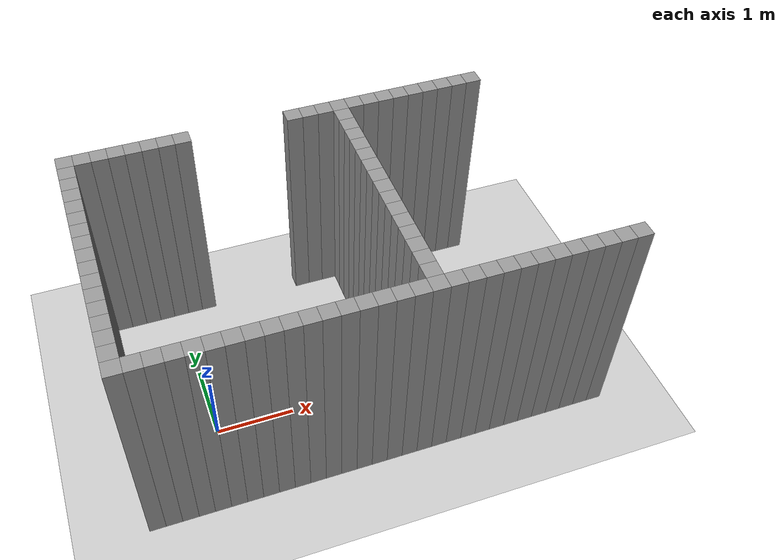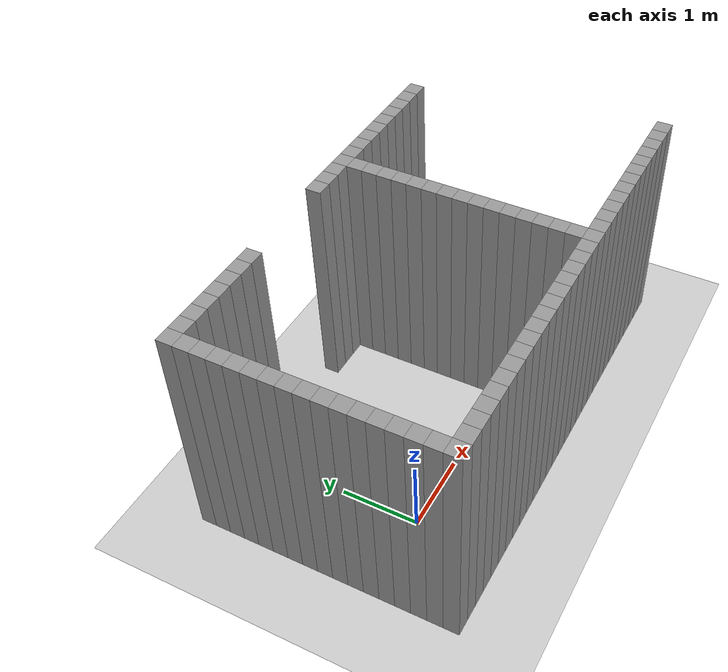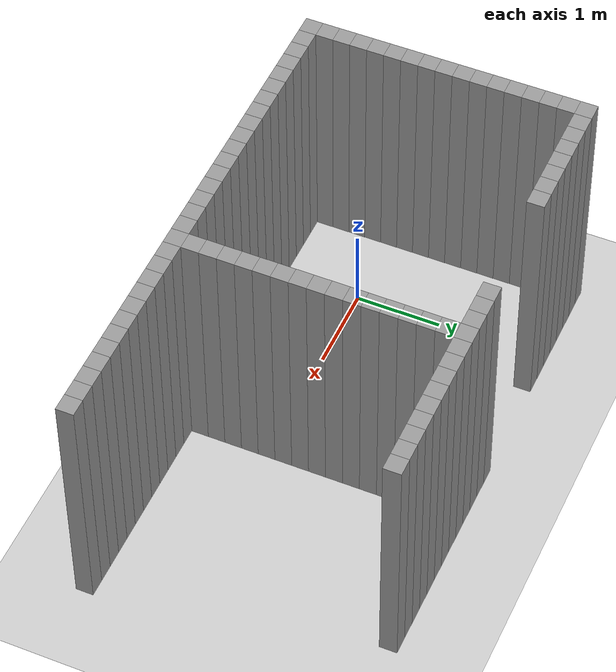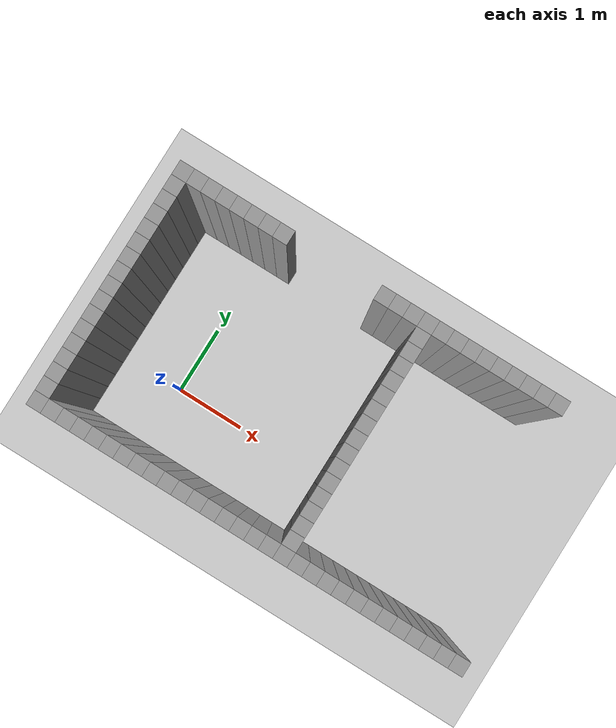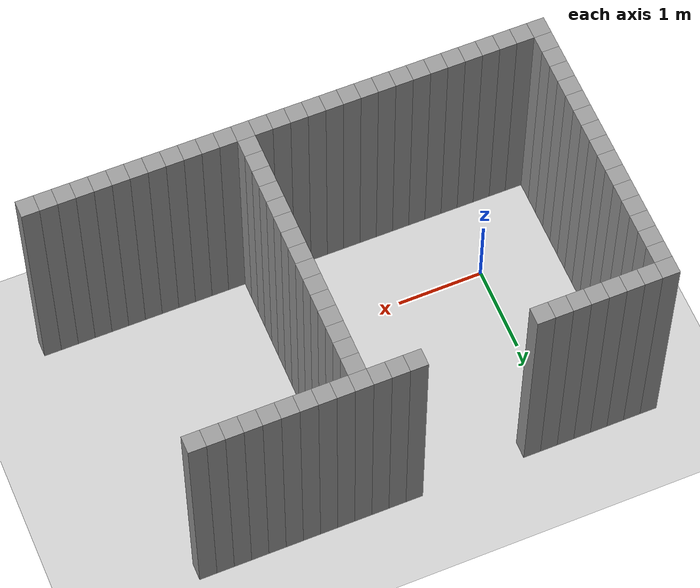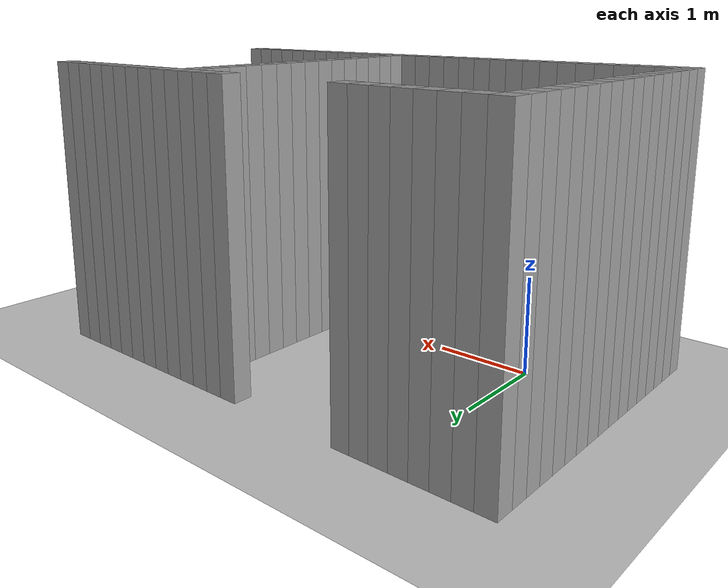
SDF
<sdf version="1.7">
 <world name="default">
  <model name="ground_plane">
   <static>1</static>
   <link name="link">
    <collision name="collision">
     <geometry><plane><normal>0 0 1</normal><size>100 100</size></plane></geometry>
     <surface>
      <contact><collide_bitmask>65535</collide_bitmask></contact>
      <friction><ode><mu>100</mu><mu2>50</mu2></ode></friction>
     </surface>
    </collision>
    <visual name="visual">
     <cast_shadows>0</cast_shadows>
     <geometry><plane><normal>0 0 1</normal><size>100 100</size></plane></geometry>
     <material>
      <script><uri>file://media/materials/scripts/gazebo.material</uri><name>Gazebo/Grey</name></script>
     </material>
    </visual>
   </link>
  </model>
  <model name="image49974">
   <pose>-1 -1 0 0 -0 0</pose>
   <link name="Wall_0">
    <collision name="Wall_0_Collision">
     <geometry><box><size>0.2 0.2 3</size></box></geometry>
     <pose>0 0 1.5 0 -0 0</pose>
    </collision>
    <visual name="Wall_0_Visual">
     <pose>0 0 1.5 0 -0 0</pose>
     <geometry><box><size>0.2 0.2 3</size></box></geometry>
     <material>
      <script><uri>file://media/materials/scripts/gazebo.material</uri><name>Gazebo/Grey</name></script>
      <ambient>1 1 1 1</ambient>
     </material>
     <meta><layer>0</layer></meta>
    </visual>
   </link>
   <link name="Wall_1">
    <collision name="Wall_1_Collision">
     <geometry><box><size>0.2 0.2 3</size></box></geometry>
     <pose>0 0 1.5 0 -0 0</pose>
    </collision>
    <visual name="Wall_1_Visual">
     <pose>0 0 1.5 0 -0 0</pose>
     <geometry><box><size>0.2 0.2 3</size></box></geometry>
     <material>
      <script><uri>file://media/materials/scripts/gazebo.material</uri><name>Gazebo/Grey</name></script>
      <ambient>1 1 1 1</ambient>
     </material>
     <meta><layer>0</layer></meta>
    </visual>
    <pose>0.0 0.2 0 0 -0 0</pose>
   </link>
   <link name="Wall_2">
    <collision name="Wall_2_Collision">
     <geometry><box><size>0.2 0.2 3</size></box></geometry>
     <pose>0 0 1.5 0 -0 0</pose>
    </collision>
    <visual name="Wall_2_Visual">
     <pose>0 0 1.5 0 -0 0</pose>
     <geometry><box><size>0.2 0.2 3</size></box></geometry>
     <material>
      <script><uri>file://media/materials/scripts/gazebo.material</uri><name>Gazebo/Grey</name></script>
      <ambient>1 1 1 1</ambient>
     </material>
     <meta><layer>0</layer></meta>
    </visual>
    <pose>0.0 0.4 0 0 -0 0</pose>
   </link>
   <link name="Wall_3">
    <collision name="Wall_3_Collision">
     <geometry><box><size>0.2 0.2 3</size></box></geometry>
     <pose>0 0 1.5 0 -0 0</pose>
    </collision>
    <visual name="Wall_3_Visual">
     <pose>0 0 1.5 0 -0 0</pose>
     <geometry><box><size>0.2 0.2 3</size></box></geometry>
     <material>
      <script><uri>file://media/materials/scripts/gazebo.material</uri><name>Gazebo/Grey</name></script>
      <ambient>1 1 1 1</ambient>
     </material>
     <meta><layer>0</layer></meta>
    </visual>
    <pose>0.0 0.6000000000000001 0 0 -0 0</pose>
   </link>
   <link name="Wall_4">
    <collision name="Wall_4_Collision">
     <geometry><box><size>0.2 0.2 3</size></box></geometry>
     <pose>0 0 1.5 0 -0 0</pose>
    </collision>
    <visual name="Wall_4_Visual">
     <pose>0 0 1.5 0 -0 0</pose>
     <geometry><box><size>0.2 0.2 3</size></box></geometry>
     <material>
      <script><uri>file://media/materials/scripts/gazebo.material</uri><name>Gazebo/Grey</name></script>
      <ambient>1 1 1 1</ambient>
     </material>
     <meta><layer>0</layer></meta>
    </visual>
    <pose>0.0 0.8 0 0 -0 0</pose>
   </link>
   <link name="Wall_5">
    <collision name="Wall_5_Collision">
     <geometry><box><size>0.2 0.2 3</size></box></geometry>
     <pose>0 0 1.5 0 -0 0</pose>
    </collision>
    <visual name="Wall_5_Visual">
     <pose>0 0 1.5 0 -0 0</pose>
     <geometry><box><size>0.2 0.2 3</size></box></geometry>
     <material>
      <script><uri>file://media/materials/scripts/gazebo.material</uri><name>Gazebo/Grey</name></script>
      <ambient>1 1 1 1</ambient>
     </material>
     <meta><layer>0</layer></meta>
    </visual>
    <pose>0.0 1.0 0 0 -0 0</pose>
   </link>
   <link name="Wall_6">
    <collision name="Wall_6_Collision">
     <geometry><box><size>0.2 0.2 3</size></box></geometry>
     <pose>0 0 1.5 0 -0 0</pose>
    </collision>
    <visual name="Wall_6_Visual">
     <pose>0 0 1.5 0 -0 0</pose>
     <geometry><box><size>0.2 0.2 3</size></box></geometry>
     <material>
      <script><uri>file://media/materials/scripts/gazebo.material</uri><name>Gazebo/Grey</name></script>
      <ambient>1 1 1 1</ambient>
     </material>
     <meta><layer>0</layer></meta>
    </visual>
    <pose>0.0 1.2000000000000002 0 0 -0 0</pose>
   </link>
   <link name="Wall_7">
    <collision name="Wall_7_Collision">
     <geometry><box><size>0.2 0.2 3</size></box></geometry>
     <pose>0 0 1.5 0 -0 0</pose>
    </collision>
    <visual name="Wall_7_Visual">
     <pose>0 0 1.5 0 -0 0</pose>
     <geometry><box><size>0.2 0.2 3</size></box></geometry>
     <material>
      <script><uri>file://media/materials/scripts/gazebo.material</uri><name>Gazebo/Grey</name></script>
      <ambient>1 1 1 1</ambient>
     </material>
     <meta><layer>0</layer></meta>
    </visual>
    <pose>0.0 1.4000000000000001 0 0 -0 0</pose>
   </link>
   <link name="Wall_8">
    <collision name="Wall_8_Collision">
     <geometry><box><size>0.2 0.2 3</size></box></geometry>
     <pose>0 0 1.5 0 -0 0</pose>
    </collision>
    <visual name="Wall_8_Visual">
     <pose>0 0 1.5 0 -0 0</pose>
     <geometry><box><size>0.2 0.2 3</size></box></geometry>
     <material>
      <script><uri>file://media/materials/scripts/gazebo.material</uri><name>Gazebo/Grey</name></script>
      <ambient>1 1 1 1</ambient>
     </material>
     <meta><layer>0</layer></meta>
    </visual>
    <pose>0.0 1.6 0 0 -0 0</pose>
   </link>
   <link name="Wall_9">
    <collision name="Wall_9_Collision">
     <geometry><box><size>0.2 0.2 3</size></box></geometry>
     <pose>0 0 1.5 0 -0 0</pose>
    </collision>
    <visual name="Wall_9_Visual">
     <pose>0 0 1.5 0 -0 0</pose>
     <geometry><box><size>0.2 0.2 3</size></box></geometry>
     <material>
      <script><uri>file://media/materials/scripts/gazebo.material</uri><name>Gazebo/Grey</name></script>
      <ambient>1 1 1 1</ambient>
     </material>
     <meta><layer>0</layer></meta>
    </visual>
    <pose>0.0 1.8 0 0 -0 0</pose>
   </link>
   <link name="Wall_10">
    <collision name="Wall_10_Collision">
     <geometry><box><size>0.2 0.2 3</size></box></geometry>
     <pose>0 0 1.5 0 -0 0</pose>
    </collision>
    <visual name="Wall_10_Visual">
     <pose>0 0 1.5 0 -0 0</pose>
     <geometry><box><size>0.2 0.2 3</size></box></geometry>
     <material>
      <script><uri>file://media/materials/scripts/gazebo.material</uri><name>Gazebo/Grey</name></script>
      <ambient>1 1 1 1</ambient>
     </material>
     <meta><layer>0</layer></meta>
    </visual>
    <pose>0.0 2.0 0 0 -0 0</pose>
   </link>
   <link name="Wall_11">
    <collision name="Wall_11_Collision">
     <geometry><box><size>0.2 0.2 3</size></box></geometry>
     <pose>0 0 1.5 0 -0 0</pose>
    </collision>
    <visual name="Wall_11_Visual">
     <pose>0 0 1.5 0 -0 0</pose>
     <geometry><box><size>0.2 0.2 3</size></box></geometry>
     <material>
      <script><uri>file://media/materials/scripts/gazebo.material</uri><name>Gazebo/Grey</name></script>
      <ambient>1 1 1 1</ambient>
     </material>
     <meta><layer>0</layer></meta>
    </visual>
    <pose>0.0 2.2 0 0 -0 0</pose>
   </link>
   <link name="Wall_12">
    <collision name="Wall_12_Collision">
     <geometry><box><size>0.2 0.2 3</size></box></geometry>
     <pose>0 0 1.5 0 -0 0</pose>
    </collision>
    <visual name="Wall_12_Visual">
     <pose>0 0 1.5 0 -0 0</pose>
     <geometry><box><size>0.2 0.2 3</size></box></geometry>
     <material>
      <script><uri>file://media/materials/scripts/gazebo.material</uri><name>Gazebo/Grey</name></script>
      <ambient>1 1 1 1</ambient>
     </material>
     <meta><layer>0</layer></meta>
    </visual>
    <pose>0.0 2.4000000000000004 0 0 -0 0</pose>
   </link>
   <link name="Wall_13">
    <collision name="Wall_13_Collision">
     <geometry><box><size>0.2 0.2 3</size></box></geometry>
     <pose>0 0 1.5 0 -0 0</pose>
    </collision>
    <visual name="Wall_13_Visual">
     <pose>0 0 1.5 0 -0 0</pose>
     <geometry><box><size>0.2 0.2 3</size></box></geometry>
     <material>
      <script><uri>file://media/materials/scripts/gazebo.material</uri><name>Gazebo/Grey</name></script>
      <ambient>1 1 1 1</ambient>
     </material>
     <meta><layer>0</layer></meta>
    </visual>
    <pose>0.0 2.6 0 0 -0 0</pose>
   </link>
   <link name="Wall_14">
    <collision name="Wall_14_Collision">
     <geometry><box><size>0.2 0.2 3</size></box></geometry>
     <pose>0 0 1.5 0 -0 0</pose>
    </collision>
    <visual name="Wall_14_Visual">
     <pose>0 0 1.5 0 -0 0</pose>
     <geometry><box><size>0.2 0.2 3</size></box></geometry>
     <material>
      <script><uri>file://media/materials/scripts/gazebo.material</uri><name>Gazebo/Grey</name></script>
      <ambient>1 1 1 1</ambient>
     </material>
     <meta><layer>0</layer></meta>
    </visual>
    <pose>0.0 2.8000000000000003 0 0 -0 0</pose>
   </link>
   <link name="Wall_15">
    <collision name="Wall_15_Collision">
     <geometry><box><size>0.2 0.2 3</size></box></geometry>
     <pose>0 0 1.5 0 -0 0</pose>
    </collision>
    <visual name="Wall_15_Visual">
     <pose>0 0 1.5 0 -0 0</pose>
     <geometry><box><size>0.2 0.2 3</size></box></geometry>
     <material>
      <script><uri>file://media/materials/scripts/gazebo.material</uri><name>Gazebo/Grey</name></script>
      <ambient>1 1 1 1</ambient>
     </material>
     <meta><layer>0</layer></meta>
    </visual>
    <pose>0.0 3.0 0 0 -0 0</pose>
   </link>
   <link name="Wall_16">
    <collision name="Wall_16_Collision">
     <geometry><box><size>0.2 0.2 3</size></box></geometry>
     <pose>0 0 1.5 0 -0 0</pose>
    </collision>
    <visual name="Wall_16_Visual">
     <pose>0 0 1.5 0 -0 0</pose>
     <geometry><box><size>0.2 0.2 3</size></box></geometry>
     <material>
      <script><uri>file://media/materials/scripts/gazebo.material</uri><name>Gazebo/Grey</name></script>
      <ambient>1 1 1 1</ambient>
     </material>
     <meta><layer>0</layer></meta>
    </visual>
    <pose>0.0 3.2 0 0 -0 0</pose>
   </link>
   <link name="Wall_60">
    <collision name="Wall_60_Collision">
     <geometry><box><size>0.2 0.2 3</size></box></geometry>
     <pose>0 0 1.5 0 -0 0</pose>
    </collision>
    <visual name="Wall_60_Visual">
     <pose>0 0 1.5 0 -0 0</pose>
     <geometry><box><size>0.2 0.2 3</size></box></geometry>
     <material>
      <script><uri>file://media/materials/scripts/gazebo.material</uri><name>Gazebo/Grey</name></script>
      <ambient>1 1 1 1</ambient>
     </material>
     <meta><layer>0</layer></meta>
    </visual>
    <pose>0.2 0.0 0 0 -0 0</pose>
   </link>
   <link name="Wall_61">
    <collision name="Wall_61_Collision">
     <geometry><box><size>0.2 0.2 3</size></box></geometry>
     <pose>0 0 1.5 0 -0 0</pose>
    </collision>
    <visual name="Wall_61_Visual">
     <pose>0 0 1.5 0 -0 0</pose>
     <geometry><box><size>0.2 0.2 3</size></box></geometry>
     <material>
      <script><uri>file://media/materials/scripts/gazebo.material</uri><name>Gazebo/Grey</name></script>
      <ambient>1 1 1 1</ambient>
     </material>
     <meta><layer>0</layer></meta>
    </visual>
    <pose>0.2 3.2 0 0 -0 0</pose>
   </link>
   <link name="Wall_66">
    <collision name="Wall_66_Collision">
     <geometry><box><size>0.2 0.2 3</size></box></geometry>
     <pose>0 0 1.5 0 -0 0</pose>
    </collision>
    <visual name="Wall_66_Visual">
     <pose>0 0 1.5 0 -0 0</pose>
     <geometry><box><size>0.2 0.2 3</size></box></geometry>
     <material>
      <script><uri>file://media/materials/scripts/gazebo.material</uri><name>Gazebo/Grey</name></script>
      <ambient>1 1 1 1</ambient>
     </material>
     <meta><layer>0</layer></meta>
    </visual>
    <pose>0.4 0.0 0 0 -0 0</pose>
   </link>
   <link name="Wall_67">
    <collision name="Wall_67_Collision">
     <geometry><box><size>0.2 0.2 3</size></box></geometry>
     <pose>0 0 1.5 0 -0 0</pose>
    </collision>
    <visual name="Wall_67_Visual">
     <pose>0 0 1.5 0 -0 0</pose>
     <geometry><box><size>0.2 0.2 3</size></box></geometry>
     <material>
      <script><uri>file://media/materials/scripts/gazebo.material</uri><name>Gazebo/Grey</name></script>
      <ambient>1 1 1 1</ambient>
     </material>
     <meta><layer>0</layer></meta>
    </visual>
    <pose>0.4 3.2 0 0 -0 0</pose>
   </link>
   <link name="Wall_72">
    <collision name="Wall_72_Collision">
     <geometry><box><size>0.2 0.2 3</size></box></geometry>
     <pose>0 0 1.5 0 -0 0</pose>
    </collision>
    <visual name="Wall_72_Visual">
     <pose>0 0 1.5 0 -0 0</pose>
     <geometry><box><size>0.2 0.2 3</size></box></geometry>
     <material>
      <script><uri>file://media/materials/scripts/gazebo.material</uri><name>Gazebo/Grey</name></script>
      <ambient>1 1 1 1</ambient>
     </material>
     <meta><layer>0</layer></meta>
    </visual>
    <pose>0.6000000000000001 0.0 0 0 -0 0</pose>
   </link>
   <link name="Wall_73">
    <collision name="Wall_73_Collision">
     <geometry><box><size>0.2 0.2 3</size></box></geometry>
     <pose>0 0 1.5 0 -0 0</pose>
    </collision>
    <visual name="Wall_73_Visual">
     <pose>0 0 1.5 0 -0 0</pose>
     <geometry><box><size>0.2 0.2 3</size></box></geometry>
     <material>
      <script><uri>file://media/materials/scripts/gazebo.material</uri><name>Gazebo/Grey</name></script>
      <ambient>1 1 1 1</ambient>
     </material>
     <meta><layer>0</layer></meta>
    </visual>
    <pose>0.6000000000000001 3.2 0 0 -0 0</pose>
   </link>
   <link name="Wall_78">
    <collision name="Wall_78_Collision">
     <geometry><box><size>0.2 0.2 3</size></box></geometry>
     <pose>0 0 1.5 0 -0 0</pose>
    </collision>
    <visual name="Wall_78_Visual">
     <pose>0 0 1.5 0 -0 0</pose>
     <geometry><box><size>0.2 0.2 3</size></box></geometry>
     <material>
      <script><uri>file://media/materials/scripts/gazebo.material</uri><name>Gazebo/Grey</name></script>
      <ambient>1 1 1 1</ambient>
     </material>
     <meta><layer>0</layer></meta>
    </visual>
    <pose>0.8 0.0 0 0 -0 0</pose>
   </link>
   <link name="Wall_79">
    <collision name="Wall_79_Collision">
     <geometry><box><size>0.2 0.2 3</size></box></geometry>
     <pose>0 0 1.5 0 -0 0</pose>
    </collision>
    <visual name="Wall_79_Visual">
     <pose>0 0 1.5 0 -0 0</pose>
     <geometry><box><size>0.2 0.2 3</size></box></geometry>
     <material>
      <script><uri>file://media/materials/scripts/gazebo.material</uri><name>Gazebo/Grey</name></script>
      <ambient>1 1 1 1</ambient>
     </material>
     <meta><layer>0</layer></meta>
    </visual>
    <pose>0.8 3.2 0 0 -0 0</pose>
   </link>
   <link name="Wall_84">
    <collision name="Wall_84_Collision">
     <geometry><box><size>0.2 0.2 3</size></box></geometry>
     <pose>0 0 1.5 0 -0 0</pose>
    </collision>
    <visual name="Wall_84_Visual">
     <pose>0 0 1.5 0 -0 0</pose>
     <geometry><box><size>0.2 0.2 3</size></box></geometry>
     <material>
      <script><uri>file://media/materials/scripts/gazebo.material</uri><name>Gazebo/Grey</name></script>
      <ambient>1 1 1 1</ambient>
     </material>
     <meta><layer>0</layer></meta>
    </visual>
    <pose>1.0 0.0 0 0 -0 0</pose>
   </link>
   <link name="Wall_85">
    <collision name="Wall_85_Collision">
     <geometry><box><size>0.2 0.2 3</size></box></geometry>
     <pose>0 0 1.5 0 -0 0</pose>
    </collision>
    <visual name="Wall_85_Visual">
     <pose>0 0 1.5 0 -0 0</pose>
     <geometry><box><size>0.2 0.2 3</size></box></geometry>
     <material>
      <script><uri>file://media/materials/scripts/gazebo.material</uri><name>Gazebo/Grey</name></script>
      <ambient>1 1 1 1</ambient>
     </material>
     <meta><layer>0</layer></meta>
    </visual>
    <pose>1.0 3.2 0 0 -0 0</pose>
   </link>
   <link name="Wall_89">
    <collision name="Wall_89_Collision">
     <geometry><box><size>0.2 0.2 3</size></box></geometry>
     <pose>0 0 1.5 0 -0 0</pose>
    </collision>
    <visual name="Wall_89_Visual">
     <pose>0 0 1.5 0 -0 0</pose>
     <geometry><box><size>0.2 0.2 3</size></box></geometry>
     <material>
      <script><uri>file://media/materials/scripts/gazebo.material</uri><name>Gazebo/Grey</name></script>
      <ambient>1 1 1 1</ambient>
     </material>
     <meta><layer>0</layer></meta>
    </visual>
    <pose>1.2000000000000002 0.0 0 0 -0 0</pose>
   </link>
   <link name="Wall_90">
    <collision name="Wall_90_Collision">
     <geometry><box><size>0.2 0.2 3</size></box></geometry>
     <pose>0 0 1.5 0 -0 0</pose>
    </collision>
    <visual name="Wall_90_Visual">
     <pose>0 0 1.5 0 -0 0</pose>
     <geometry><box><size>0.2 0.2 3</size></box></geometry>
     <material>
      <script><uri>file://media/materials/scripts/gazebo.material</uri><name>Gazebo/Grey</name></script>
      <ambient>1 1 1 1</ambient>
     </material>
     <meta><layer>0</layer></meta>
    </visual>
    <pose>1.2000000000000002 3.2 0 0 -0 0</pose>
   </link>
   <link name="Wall_94">
    <collision name="Wall_94_Collision">
     <geometry><box><size>0.2 0.2 3</size></box></geometry>
     <pose>0 0 1.5 0 -0 0</pose>
    </collision>
    <visual name="Wall_94_Visual">
     <pose>0 0 1.5 0 -0 0</pose>
     <geometry><box><size>0.2 0.2 3</size></box></geometry>
     <material>
      <script><uri>file://media/materials/scripts/gazebo.material</uri><name>Gazebo/Grey</name></script>
      <ambient>1 1 1 1</ambient>
     </material>
     <meta><layer>0</layer></meta>
    </visual>
    <pose>1.4000000000000001 0.0 0 0 -0 0</pose>
   </link>
   <link name="Wall_95">
    <collision name="Wall_95_Collision">
     <geometry><box><size>0.2 0.2 3</size></box></geometry>
     <pose>0 0 1.5 0 -0 0</pose>
    </collision>
    <visual name="Wall_95_Visual">
     <pose>0 0 1.5 0 -0 0</pose>
     <geometry><box><size>0.2 0.2 3</size></box></geometry>
     <material>
      <script><uri>file://media/materials/scripts/gazebo.material</uri><name>Gazebo/Grey</name></script>
      <ambient>1 1 1 1</ambient>
     </material>
     <meta><layer>0</layer></meta>
    </visual>
    <pose>1.4000000000000001 3.2 0 0 -0 0</pose>
   </link>
   <link name="Wall_99">
    <collision name="Wall_99_Collision">
     <geometry><box><size>0.2 0.2 3</size></box></geometry>
     <pose>0 0 1.5 0 -0 0</pose>
    </collision>
    <visual name="Wall_99_Visual">
     <pose>0 0 1.5 0 -0 0</pose>
     <geometry><box><size>0.2 0.2 3</size></box></geometry>
     <material>
      <script><uri>file://media/materials/scripts/gazebo.material</uri><name>Gazebo/Grey</name></script>
      <ambient>1 1 1 1</ambient>
     </material>
     <meta><layer>0</layer></meta>
    </visual>
    <pose>1.6 0.0 0 0 -0 0</pose>
   </link>
   <link name="Wall_103">
    <collision name="Wall_103_Collision">
     <geometry><box><size>0.2 0.2 3</size></box></geometry>
     <pose>0 0 1.5 0 -0 0</pose>
    </collision>
    <visual name="Wall_103_Visual">
     <pose>0 0 1.5 0 -0 0</pose>
     <geometry><box><size>0.2 0.2 3</size></box></geometry>
     <material>
      <script><uri>file://media/materials/scripts/gazebo.material</uri><name>Gazebo/Grey</name></script>
      <ambient>1 1 1 1</ambient>
     </material>
     <meta><layer>0</layer></meta>
    </visual>
    <pose>1.8 0.0 0 0 -0 0</pose>
   </link>
   <link name="Wall_107">
    <collision name="Wall_107_Collision">
     <geometry><box><size>0.2 0.2 3</size></box></geometry>
     <pose>0 0 1.5 0 -0 0</pose>
    </collision>
    <visual name="Wall_107_Visual">
     <pose>0 0 1.5 0 -0 0</pose>
     <geometry><box><size>0.2 0.2 3</size></box></geometry>
     <material>
      <script><uri>file://media/materials/scripts/gazebo.material</uri><name>Gazebo/Grey</name></script>
      <ambient>1 1 1 1</ambient>
     </material>
     <meta><layer>0</layer></meta>
    </visual>
    <pose>2.0 0.0 0 0 -0 0</pose>
   </link>
   <link name="Wall_111">
    <collision name="Wall_111_Collision">
     <geometry><box><size>0.2 0.2 3</size></box></geometry>
     <pose>0 0 1.5 0 -0 0</pose>
    </collision>
    <visual name="Wall_111_Visual">
     <pose>0 0 1.5 0 -0 0</pose>
     <geometry><box><size>0.2 0.2 3</size></box></geometry>
     <material>
      <script><uri>file://media/materials/scripts/gazebo.material</uri><name>Gazebo/Grey</name></script>
      <ambient>1 1 1 1</ambient>
     </material>
     <meta><layer>0</layer></meta>
    </visual>
    <pose>2.2 0.0 0 0 -0 0</pose>
   </link>
   <link name="Wall_115">
    <collision name="Wall_115_Collision">
     <geometry><box><size>0.2 0.2 3</size></box></geometry>
     <pose>0 0 1.5 0 -0 0</pose>
    </collision>
    <visual name="Wall_115_Visual">
     <pose>0 0 1.5 0 -0 0</pose>
     <geometry><box><size>0.2 0.2 3</size></box></geometry>
     <material>
      <script><uri>file://media/materials/scripts/gazebo.material</uri><name>Gazebo/Grey</name></script>
      <ambient>1 1 1 1</ambient>
     </material>
     <meta><layer>0</layer></meta>
    </visual>
    <pose>2.4000000000000004 0.0 0 0 -0 0</pose>
   </link>
   <link name="Wall_131">
    <collision name="Wall_131_Collision">
     <geometry><box><size>0.2 0.2 3</size></box></geometry>
     <pose>0 0 1.5 0 -0 0</pose>
    </collision>
    <visual name="Wall_131_Visual">
     <pose>0 0 1.5 0 -0 0</pose>
     <geometry><box><size>0.2 0.2 3</size></box></geometry>
     <material>
      <script><uri>file://media/materials/scripts/gazebo.material</uri><name>Gazebo/Grey</name></script>
      <ambient>1 1 1 1</ambient>
     </material>
     <meta><layer>0</layer></meta>
    </visual>
    <pose>2.6 0.0 0 0 -0 0</pose>
   </link>
   <link name="Wall_136">
    <collision name="Wall_136_Collision">
     <geometry><box><size>0.2 0.2 3</size></box></geometry>
     <pose>0 0 1.5 0 -0 0</pose>
    </collision>
    <visual name="Wall_136_Visual">
     <pose>0 0 1.5 0 -0 0</pose>
     <geometry><box><size>0.2 0.2 3</size></box></geometry>
     <material>
      <script><uri>file://media/materials/scripts/gazebo.material</uri><name>Gazebo/Grey</name></script>
      <ambient>1 1 1 1</ambient>
     </material>
     <meta><layer>0</layer></meta>
    </visual>
    <pose>2.8000000000000003 0.0 0 0 -0 0</pose>
   </link>
   <link name="Wall_137">
    <collision name="Wall_137_Collision">
     <geometry><box><size>0.2 0.2 3</size></box></geometry>
     <pose>0 0 1.5 0 -0 0</pose>
    </collision>
    <visual name="Wall_137_Visual">
     <pose>0 0 1.5 0 -0 0</pose>
     <geometry><box><size>0.2 0.2 3</size></box></geometry>
     <material>
      <script><uri>file://media/materials/scripts/gazebo.material</uri><name>Gazebo/Grey</name></script>
      <ambient>1 1 1 1</ambient>
     </material>
     <meta><layer>0</layer></meta>
    </visual>
    <pose>2.8000000000000003 3.2 0 0 -0 0</pose>
   </link>
   <link name="Wall_145">
    <collision name="Wall_145_Collision">
     <geometry><box><size>0.2 0.2 3</size></box></geometry>
     <pose>0 0 1.5 0 -0 0</pose>
    </collision>
    <visual name="Wall_145_Visual">
     <pose>0 0 1.5 0 -0 0</pose>
     <geometry><box><size>0.2 0.2 3</size></box></geometry>
     <material>
      <script><uri>file://media/materials/scripts/gazebo.material</uri><name>Gazebo/Grey</name></script>
      <ambient>1 1 1 1</ambient>
     </material>
     <meta><layer>0</layer></meta>
    </visual>
    <pose>3.0 0.0 0 0 -0 0</pose>
   </link>
   <link name="Wall_146">
    <collision name="Wall_146_Collision">
     <geometry><box><size>0.2 0.2 3</size></box></geometry>
     <pose>0 0 1.5 0 -0 0</pose>
    </collision>
    <visual name="Wall_146_Visual">
     <pose>0 0 1.5 0 -0 0</pose>
     <geometry><box><size>0.2 0.2 3</size></box></geometry>
     <material>
      <script><uri>file://media/materials/scripts/gazebo.material</uri><name>Gazebo/Grey</name></script>
      <ambient>1 1 1 1</ambient>
     </material>
     <meta><layer>0</layer></meta>
    </visual>
    <pose>3.0 3.2 0 0 -0 0</pose>
   </link>
   <link name="Wall_149">
    <collision name="Wall_149_Collision">
     <geometry><box><size>0.2 0.2 3</size></box></geometry>
     <pose>0 0 1.5 0 -0 0</pose>
    </collision>
    <visual name="Wall_149_Visual">
     <pose>0 0 1.5 0 -0 0</pose>
     <geometry><box><size>0.2 0.2 3</size></box></geometry>
     <material>
      <script><uri>file://media/materials/scripts/gazebo.material</uri><name>Gazebo/Grey</name></script>
      <ambient>1 1 1 1</ambient>
     </material>
     <meta><layer>0</layer></meta>
    </visual>
    <pose>3.2 0.0 0 0 -0 0</pose>
   </link>
   <link name="Wall_150">
    <collision name="Wall_150_Collision">
     <geometry><box><size>0.2 0.2 3</size></box></geometry>
     <pose>0 0 1.5 0 -0 0</pose>
    </collision>
    <visual name="Wall_150_Visual">
     <pose>0 0 1.5 0 -0 0</pose>
     <geometry><box><size>0.2 0.2 3</size></box></geometry>
     <material>
      <script><uri>file://media/materials/scripts/gazebo.material</uri><name>Gazebo/Grey</name></script>
      <ambient>1 1 1 1</ambient>
     </material>
     <meta><layer>0</layer></meta>
    </visual>
    <pose>3.2 3.2 0 0 -0 0</pose>
   </link>
   <link name="Wall_153">
    <collision name="Wall_153_Collision">
     <geometry><box><size>0.2 0.2 3</size></box></geometry>
     <pose>0 0 1.5 0 -0 0</pose>
    </collision>
    <visual name="Wall_153_Visual">
     <pose>0 0 1.5 0 -0 0</pose>
     <geometry><box><size>0.2 0.2 3</size></box></geometry>
     <material>
      <script><uri>file://media/materials/scripts/gazebo.material</uri><name>Gazebo/Grey</name></script>
      <ambient>1 1 1 1</ambient>
     </material>
     <meta><layer>0</layer></meta>
    </visual>
    <pose>3.4000000000000004 0.0 0 0 -0 0</pose>
   </link>
   <link name="Wall_154">
    <collision name="Wall_154_Collision">
     <geometry><box><size>0.2 0.2 3</size></box></geometry>
     <pose>0 0 1.5 0 -0 0</pose>
    </collision>
    <visual name="Wall_154_Visual">
     <pose>0 0 1.5 0 -0 0</pose>
     <geometry><box><size>0.2 0.2 3</size></box></geometry>
     <material>
      <script><uri>file://media/materials/scripts/gazebo.material</uri><name>Gazebo/Grey</name></script>
      <ambient>1 1 1 1</ambient>
     </material>
     <meta><layer>0</layer></meta>
    </visual>
    <pose>3.4000000000000004 0.2 0 0 -0 0</pose>
   </link>
   <link name="Wall_155">
    <collision name="Wall_155_Collision">
     <geometry><box><size>0.2 0.2 3</size></box></geometry>
     <pose>0 0 1.5 0 -0 0</pose>
    </collision>
    <visual name="Wall_155_Visual">
     <pose>0 0 1.5 0 -0 0</pose>
     <geometry><box><size>0.2 0.2 3</size></box></geometry>
     <material>
      <script><uri>file://media/materials/scripts/gazebo.material</uri><name>Gazebo/Grey</name></script>
      <ambient>1 1 1 1</ambient>
     </material>
     <meta><layer>0</layer></meta>
    </visual>
    <pose>3.4000000000000004 0.4 0 0 -0 0</pose>
   </link>
   <link name="Wall_156">
    <collision name="Wall_156_Collision">
     <geometry><box><size>0.2 0.2 3</size></box></geometry>
     <pose>0 0 1.5 0 -0 0</pose>
    </collision>
    <visual name="Wall_156_Visual">
     <pose>0 0 1.5 0 -0 0</pose>
     <geometry><box><size>0.2 0.2 3</size></box></geometry>
     <material>
      <script><uri>file://media/materials/scripts/gazebo.material</uri><name>Gazebo/Grey</name></script>
      <ambient>1 1 1 1</ambient>
     </material>
     <meta><layer>0</layer></meta>
    </visual>
    <pose>3.4000000000000004 0.6000000000000001 0 0 -0 0</pose>
   </link>
   <link name="Wall_157">
    <collision name="Wall_157_Collision">
     <geometry><box><size>0.2 0.2 3</size></box></geometry>
     <pose>0 0 1.5 0 -0 0</pose>
    </collision>
    <visual name="Wall_157_Visual">
     <pose>0 0 1.5 0 -0 0</pose>
     <geometry><box><size>0.2 0.2 3</size></box></geometry>
     <material>
      <script><uri>file://media/materials/scripts/gazebo.material</uri><name>Gazebo/Grey</name></script>
      <ambient>1 1 1 1</ambient>
     </material>
     <meta><layer>0</layer></meta>
    </visual>
    <pose>3.4000000000000004 0.8 0 0 -0 0</pose>
   </link>
   <link name="Wall_158">
    <collision name="Wall_158_Collision">
     <geometry><box><size>0.2 0.2 3</size></box></geometry>
     <pose>0 0 1.5 0 -0 0</pose>
    </collision>
    <visual name="Wall_158_Visual">
     <pose>0 0 1.5 0 -0 0</pose>
     <geometry><box><size>0.2 0.2 3</size></box></geometry>
     <material>
      <script><uri>file://media/materials/scripts/gazebo.material</uri><name>Gazebo/Grey</name></script>
      <ambient>1 1 1 1</ambient>
     </material>
     <meta><layer>0</layer></meta>
    </visual>
    <pose>3.4000000000000004 1.0 0 0 -0 0</pose>
   </link>
   <link name="Wall_159">
    <collision name="Wall_159_Collision">
     <geometry><box><size>0.2 0.2 3</size></box></geometry>
     <pose>0 0 1.5 0 -0 0</pose>
    </collision>
    <visual name="Wall_159_Visual">
     <pose>0 0 1.5 0 -0 0</pose>
     <geometry><box><size>0.2 0.2 3</size></box></geometry>
     <material>
      <script><uri>file://media/materials/scripts/gazebo.material</uri><name>Gazebo/Grey</name></script>
      <ambient>1 1 1 1</ambient>
     </material>
     <meta><layer>0</layer></meta>
    </visual>
    <pose>3.4000000000000004 1.2000000000000002 0 0 -0 0</pose>
   </link>
   <link name="Wall_160">
    <collision name="Wall_160_Collision">
     <geometry><box><size>0.2 0.2 3</size></box></geometry>
     <pose>0 0 1.5 0 -0 0</pose>
    </collision>
    <visual name="Wall_160_Visual">
     <pose>0 0 1.5 0 -0 0</pose>
     <geometry><box><size>0.2 0.2 3</size></box></geometry>
     <material>
      <script><uri>file://media/materials/scripts/gazebo.material</uri><name>Gazebo/Grey</name></script>
      <ambient>1 1 1 1</ambient>
     </material>
     <meta><layer>0</layer></meta>
    </visual>
    <pose>3.4000000000000004 1.4000000000000001 0 0 -0 0</pose>
   </link>
   <link name="Wall_161">
    <collision name="Wall_161_Collision">
     <geometry><box><size>0.2 0.2 3</size></box></geometry>
     <pose>0 0 1.5 0 -0 0</pose>
    </collision>
    <visual name="Wall_161_Visual">
     <pose>0 0 1.5 0 -0 0</pose>
     <geometry><box><size>0.2 0.2 3</size></box></geometry>
     <material>
      <script><uri>file://media/materials/scripts/gazebo.material</uri><name>Gazebo/Grey</name></script>
      <ambient>1 1 1 1</ambient>
     </material>
     <meta><layer>0</layer></meta>
    </visual>
    <pose>3.4000000000000004 1.6 0 0 -0 0</pose>
   </link>
   <link name="Wall_162">
    <collision name="Wall_162_Collision">
     <geometry><box><size>0.2 0.2 3</size></box></geometry>
     <pose>0 0 1.5 0 -0 0</pose>
    </collision>
    <visual name="Wall_162_Visual">
     <pose>0 0 1.5 0 -0 0</pose>
     <geometry><box><size>0.2 0.2 3</size></box></geometry>
     <material>
      <script><uri>file://media/materials/scripts/gazebo.material</uri><name>Gazebo/Grey</name></script>
      <ambient>1 1 1 1</ambient>
     </material>
     <meta><layer>0</layer></meta>
    </visual>
    <pose>3.4000000000000004 1.8 0 0 -0 0</pose>
   </link>
   <link name="Wall_163">
    <collision name="Wall_163_Collision">
     <geometry><box><size>0.2 0.2 3</size></box></geometry>
     <pose>0 0 1.5 0 -0 0</pose>
    </collision>
    <visual name="Wall_163_Visual">
     <pose>0 0 1.5 0 -0 0</pose>
     <geometry><box><size>0.2 0.2 3</size></box></geometry>
     <material>
      <script><uri>file://media/materials/scripts/gazebo.material</uri><name>Gazebo/Grey</name></script>
      <ambient>1 1 1 1</ambient>
     </material>
     <meta><layer>0</layer></meta>
    </visual>
    <pose>3.4000000000000004 2.0 0 0 -0 0</pose>
   </link>
   <link name="Wall_164">
    <collision name="Wall_164_Collision">
     <geometry><box><size>0.2 0.2 3</size></box></geometry>
     <pose>0 0 1.5 0 -0 0</pose>
    </collision>
    <visual name="Wall_164_Visual">
     <pose>0 0 1.5 0 -0 0</pose>
     <geometry><box><size>0.2 0.2 3</size></box></geometry>
     <material>
      <script><uri>file://media/materials/scripts/gazebo.material</uri><name>Gazebo/Grey</name></script>
      <ambient>1 1 1 1</ambient>
     </material>
     <meta><layer>0</layer></meta>
    </visual>
    <pose>3.4000000000000004 2.2 0 0 -0 0</pose>
   </link>
   <link name="Wall_165">
    <collision name="Wall_165_Collision">
     <geometry><box><size>0.2 0.2 3</size></box></geometry>
     <pose>0 0 1.5 0 -0 0</pose>
    </collision>
    <visual name="Wall_165_Visual">
     <pose>0 0 1.5 0 -0 0</pose>
     <geometry><box><size>0.2 0.2 3</size></box></geometry>
     <material>
      <script><uri>file://media/materials/scripts/gazebo.material</uri><name>Gazebo/Grey</name></script>
      <ambient>1 1 1 1</ambient>
     </material>
     <meta><layer>0</layer></meta>
    </visual>
    <pose>3.4000000000000004 2.4000000000000004 0 0 -0 0</pose>
   </link>
   <link name="Wall_166">
    <collision name="Wall_166_Collision">
     <geometry><box><size>0.2 0.2 3</size></box></geometry>
     <pose>0 0 1.5 0 -0 0</pose>
    </collision>
    <visual name="Wall_166_Visual">
     <pose>0 0 1.5 0 -0 0</pose>
     <geometry><box><size>0.2 0.2 3</size></box></geometry>
     <material>
      <script><uri>file://media/materials/scripts/gazebo.material</uri><name>Gazebo/Grey</name></script>
      <ambient>1 1 1 1</ambient>
     </material>
     <meta><layer>0</layer></meta>
    </visual>
    <pose>3.4000000000000004 2.6 0 0 -0 0</pose>
   </link>
   <link name="Wall_167">
    <collision name="Wall_167_Collision">
     <geometry><box><size>0.2 0.2 3</size></box></geometry>
     <pose>0 0 1.5 0 -0 0</pose>
    </collision>
    <visual name="Wall_167_Visual">
     <pose>0 0 1.5 0 -0 0</pose>
     <geometry><box><size>0.2 0.2 3</size></box></geometry>
     <material>
      <script><uri>file://media/materials/scripts/gazebo.material</uri><name>Gazebo/Grey</name></script>
      <ambient>1 1 1 1</ambient>
     </material>
     <meta><layer>0</layer></meta>
    </visual>
    <pose>3.4000000000000004 2.8000000000000003 0 0 -0 0</pose>
   </link>
   <link name="Wall_168">
    <collision name="Wall_168_Collision">
     <geometry><box><size>0.2 0.2 3</size></box></geometry>
     <pose>0 0 1.5 0 -0 0</pose>
    </collision>
    <visual name="Wall_168_Visual">
     <pose>0 0 1.5 0 -0 0</pose>
     <geometry><box><size>0.2 0.2 3</size></box></geometry>
     <material>
      <script><uri>file://media/materials/scripts/gazebo.material</uri><name>Gazebo/Grey</name></script>
      <ambient>1 1 1 1</ambient>
     </material>
     <meta><layer>0</layer></meta>
    </visual>
    <pose>3.4000000000000004 3.0 0 0 -0 0</pose>
   </link>
   <link name="Wall_169">
    <collision name="Wall_169_Collision">
     <geometry><box><size>0.2 0.2 3</size></box></geometry>
     <pose>0 0 1.5 0 -0 0</pose>
    </collision>
    <visual name="Wall_169_Visual">
     <pose>0 0 1.5 0 -0 0</pose>
     <geometry><box><size>0.2 0.2 3</size></box></geometry>
     <material>
      <script><uri>file://media/materials/scripts/gazebo.material</uri><name>Gazebo/Grey</name></script>
      <ambient>1 1 1 1</ambient>
     </material>
     <meta><layer>0</layer></meta>
    </visual>
    <pose>3.4000000000000004 3.2 0 0 -0 0</pose>
   </link>
   <link name="Wall_172">
    <collision name="Wall_172_Collision">
     <geometry><box><size>0.2 0.2 3</size></box></geometry>
     <pose>0 0 1.5 0 -0 0</pose>
    </collision>
    <visual name="Wall_172_Visual">
     <pose>0 0 1.5 0 -0 0</pose>
     <geometry><box><size>0.2 0.2 3</size></box></geometry>
     <material>
      <script><uri>file://media/materials/scripts/gazebo.material</uri><name>Gazebo/Grey</name></script>
      <ambient>1 1 1 1</ambient>
     </material>
     <meta><layer>0</layer></meta>
    </visual>
    <pose>3.6 0.0 0 0 -0 0</pose>
   </link>
   <link name="Wall_173">
    <collision name="Wall_173_Collision">
     <geometry><box><size>0.2 0.2 3</size></box></geometry>
     <pose>0 0 1.5 0 -0 0</pose>
    </collision>
    <visual name="Wall_173_Visual">
     <pose>0 0 1.5 0 -0 0</pose>
     <geometry><box><size>0.2 0.2 3</size></box></geometry>
     <material>
      <script><uri>file://media/materials/scripts/gazebo.material</uri><name>Gazebo/Grey</name></script>
      <ambient>1 1 1 1</ambient>
     </material>
     <meta><layer>0</layer></meta>
    </visual>
    <pose>3.6 3.2 0 0 -0 0</pose>
   </link>
   <link name="Wall_176">
    <collision name="Wall_176_Collision">
     <geometry><box><size>0.2 0.2 3</size></box></geometry>
     <pose>0 0 1.5 0 -0 0</pose>
    </collision>
    <visual name="Wall_176_Visual">
     <pose>0 0 1.5 0 -0 0</pose>
     <geometry><box><size>0.2 0.2 3</size></box></geometry>
     <material>
      <script><uri>file://media/materials/scripts/gazebo.material</uri><name>Gazebo/Grey</name></script>
      <ambient>1 1 1 1</ambient>
     </material>
     <meta><layer>0</layer></meta>
    </visual>
    <pose>3.8000000000000003 0.0 0 0 -0 0</pose>
   </link>
   <link name="Wall_177">
    <collision name="Wall_177_Collision">
     <geometry><box><size>0.2 0.2 3</size></box></geometry>
     <pose>0 0 1.5 0 -0 0</pose>
    </collision>
    <visual name="Wall_177_Visual">
     <pose>0 0 1.5 0 -0 0</pose>
     <geometry><box><size>0.2 0.2 3</size></box></geometry>
     <material>
      <script><uri>file://media/materials/scripts/gazebo.material</uri><name>Gazebo/Grey</name></script>
      <ambient>1 1 1 1</ambient>
     </material>
     <meta><layer>0</layer></meta>
    </visual>
    <pose>3.8000000000000003 3.2 0 0 -0 0</pose>
   </link>
   <link name="Wall_180">
    <collision name="Wall_180_Collision">
     <geometry><box><size>0.2 0.2 3</size></box></geometry>
     <pose>0 0 1.5 0 -0 0</pose>
    </collision>
    <visual name="Wall_180_Visual">
     <pose>0 0 1.5 0 -0 0</pose>
     <geometry><box><size>0.2 0.2 3</size></box></geometry>
     <material>
      <script><uri>file://media/materials/scripts/gazebo.material</uri><name>Gazebo/Grey</name></script>
      <ambient>1 1 1 1</ambient>
     </material>
     <meta><layer>0</layer></meta>
    </visual>
    <pose>4.0 0.0 0 0 -0 0</pose>
   </link>
   <link name="Wall_181">
    <collision name="Wall_181_Collision">
     <geometry><box><size>0.2 0.2 3</size></box></geometry>
     <pose>0 0 1.5 0 -0 0</pose>
    </collision>
    <visual name="Wall_181_Visual">
     <pose>0 0 1.5 0 -0 0</pose>
     <geometry><box><size>0.2 0.2 3</size></box></geometry>
     <material>
      <script><uri>file://media/materials/scripts/gazebo.material</uri><name>Gazebo/Grey</name></script>
      <ambient>1 1 1 1</ambient>
     </material>
     <meta><layer>0</layer></meta>
    </visual>
    <pose>4.0 3.2 0 0 -0 0</pose>
   </link>
   <link name="Wall_184">
    <collision name="Wall_184_Collision">
     <geometry><box><size>0.2 0.2 3</size></box></geometry>
     <pose>0 0 1.5 0 -0 0</pose>
    </collision>
    <visual name="Wall_184_Visual">
     <pose>0 0 1.5 0 -0 0</pose>
     <geometry><box><size>0.2 0.2 3</size></box></geometry>
     <material>
      <script><uri>file://media/materials/scripts/gazebo.material</uri><name>Gazebo/Grey</name></script>
      <ambient>1 1 1 1</ambient>
     </material>
     <meta><layer>0</layer></meta>
    </visual>
    <pose>4.2 0.0 0 0 -0 0</pose>
   </link>
   <link name="Wall_185">
    <collision name="Wall_185_Collision">
     <geometry><box><size>0.2 0.2 3</size></box></geometry>
     <pose>0 0 1.5 0 -0 0</pose>
    </collision>
    <visual name="Wall_185_Visual">
     <pose>0 0 1.5 0 -0 0</pose>
     <geometry><box><size>0.2 0.2 3</size></box></geometry>
     <material>
      <script><uri>file://media/materials/scripts/gazebo.material</uri><name>Gazebo/Grey</name></script>
      <ambient>1 1 1 1</ambient>
     </material>
     <meta><layer>0</layer></meta>
    </visual>
    <pose>4.2 3.2 0 0 -0 0</pose>
   </link>
   <link name="Wall_188">
    <collision name="Wall_188_Collision">
     <geometry><box><size>0.2 0.2 3</size></box></geometry>
     <pose>0 0 1.5 0 -0 0</pose>
    </collision>
    <visual name="Wall_188_Visual">
     <pose>0 0 1.5 0 -0 0</pose>
     <geometry><box><size>0.2 0.2 3</size></box></geometry>
     <material>
      <script><uri>file://media/materials/scripts/gazebo.material</uri><name>Gazebo/Grey</name></script>
      <ambient>1 1 1 1</ambient>
     </material>
     <meta><layer>0</layer></meta>
    </visual>
    <pose>4.4 0.0 0 0 -0 0</pose>
   </link>
   <link name="Wall_189">
    <collision name="Wall_189_Collision">
     <geometry><box><size>0.2 0.2 3</size></box></geometry>
     <pose>0 0 1.5 0 -0 0</pose>
    </collision>
    <visual name="Wall_189_Visual">
     <pose>0 0 1.5 0 -0 0</pose>
     <geometry><box><size>0.2 0.2 3</size></box></geometry>
     <material>
      <script><uri>file://media/materials/scripts/gazebo.material</uri><name>Gazebo/Grey</name></script>
      <ambient>1 1 1 1</ambient>
     </material>
     <meta><layer>0</layer></meta>
    </visual>
    <pose>4.4 3.2 0 0 -0 0</pose>
   </link>
   <link name="Wall_191">
    <collision name="Wall_191_Collision">
     <geometry><box><size>0.2 0.2 3</size></box></geometry>
     <pose>0 0 1.5 0 -0 0</pose>
    </collision>
    <visual name="Wall_191_Visual">
     <pose>0 0 1.5 0 -0 0</pose>
     <geometry><box><size>0.2 0.2 3</size></box></geometry>
     <material>
      <script><uri>file://media/materials/scripts/gazebo.material</uri><name>Gazebo/Grey</name></script>
      <ambient>1 1 1 1</ambient>
     </material>
     <meta><layer>0</layer></meta>
    </visual>
    <pose>4.6000000000000005 0.0 0 0 -0 0</pose>
   </link>
   <link name="Wall_192">
    <collision name="Wall_192_Collision">
     <geometry><box><size>0.2 0.2 3</size></box></geometry>
     <pose>0 0 1.5 0 -0 0</pose>
    </collision>
    <visual name="Wall_192_Visual">
     <pose>0 0 1.5 0 -0 0</pose>
     <geometry><box><size>0.2 0.2 3</size></box></geometry>
     <material>
      <script><uri>file://media/materials/scripts/gazebo.material</uri><name>Gazebo/Grey</name></script>
      <ambient>1 1 1 1</ambient>
     </material>
     <meta><layer>0</layer></meta>
    </visual>
    <pose>4.6000000000000005 3.2 0 0 -0 0</pose>
   </link>
   <link name="Wall_194">
    <collision name="Wall_194_Collision">
     <geometry><box><size>0.2 0.2 3</size></box></geometry>
     <pose>0 0 1.5 0 -0 0</pose>
    </collision>
    <visual name="Wall_194_Visual">
     <pose>0 0 1.5 0 -0 0</pose>
     <geometry><box><size>0.2 0.2 3</size></box></geometry>
     <material>
      <script><uri>file://media/materials/scripts/gazebo.material</uri><name>Gazebo/Grey</name></script>
      <ambient>1 1 1 1</ambient>
     </material>
     <meta><layer>0</layer></meta>
    </visual>
    <pose>4.800000000000001 0.0 0 0 -0 0</pose>
   </link>
   <link name="Wall_195">
    <collision name="Wall_195_Collision">
     <geometry><box><size>0.2 0.2 3</size></box></geometry>
     <pose>0 0 1.5 0 -0 0</pose>
    </collision>
    <visual name="Wall_195_Visual">
     <pose>0 0 1.5 0 -0 0</pose>
     <geometry><box><size>0.2 0.2 3</size></box></geometry>
     <material>
      <script><uri>file://media/materials/scripts/gazebo.material</uri><name>Gazebo/Grey</name></script>
      <ambient>1 1 1 1</ambient>
     </material>
     <meta><layer>0</layer></meta>
    </visual>
    <pose>4.800000000000001 3.2 0 0 -0 0</pose>
   </link>
   <link name="Wall_197">
    <collision name="Wall_197_Collision">
     <geometry><box><size>0.2 0.2 3</size></box></geometry>
     <pose>0 0 1.5 0 -0 0</pose>
    </collision>
    <visual name="Wall_197_Visual">
     <pose>0 0 1.5 0 -0 0</pose>
     <geometry><box><size>0.2 0.2 3</size></box></geometry>
     <material>
      <script><uri>file://media/materials/scripts/gazebo.material</uri><name>Gazebo/Grey</name></script>
      <ambient>1 1 1 1</ambient>
     </material>
     <meta><layer>0</layer></meta>
    </visual>
    <pose>5.0 0.0 0 0 -0 0</pose>
   </link>
   <link name="Wall_198">
    <collision name="Wall_198_Collision">
     <geometry><box><size>0.2 0.2 3</size></box></geometry>
     <pose>0 0 1.5 0 -0 0</pose>
    </collision>
    <visual name="Wall_198_Visual">
     <pose>0 0 1.5 0 -0 0</pose>
     <geometry><box><size>0.2 0.2 3</size></box></geometry>
     <material>
      <script><uri>file://media/materials/scripts/gazebo.material</uri><name>Gazebo/Grey</name></script>
      <ambient>1 1 1 1</ambient>
     </material>
     <meta><layer>0</layer></meta>
    </visual>
    <pose>5.0 3.2 0 0 -0 0</pose>
   </link>
   <link name="Wall_200">
    <collision name="Wall_200_Collision">
     <geometry><box><size>0.2 0.2 3</size></box></geometry>
     <pose>0 0 1.5 0 -0 0</pose>
    </collision>
    <visual name="Wall_200_Visual">
     <pose>0 0 1.5 0 -0 0</pose>
     <geometry><box><size>0.2 0.2 3</size></box></geometry>
     <material>
      <script><uri>file://media/materials/scripts/gazebo.material</uri><name>Gazebo/Grey</name></script>
      <ambient>1 1 1 1</ambient>
     </material>
     <meta><layer>0</layer></meta>
    </visual>
    <pose>5.2 0.0 0 0 -0 0</pose>
   </link>
   <link name="Wall_201">
    <collision name="Wall_201_Collision">
     <geometry><box><size>0.2 0.2 3</size></box></geometry>
     <pose>0 0 1.5 0 -0 0</pose>
    </collision>
    <visual name="Wall_201_Visual">
     <pose>0 0 1.5 0 -0 0</pose>
     <geometry><box><size>0.2 0.2 3</size></box></geometry>
     <material>
      <script><uri>file://media/materials/scripts/gazebo.material</uri><name>Gazebo/Grey</name></script>
      <ambient>1 1 1 1</ambient>
     </material>
     <meta><layer>0</layer></meta>
    </visual>
    <pose>5.2 3.2 0 0 -0 0</pose>
   </link>
   <link name="Wall_216">
    <collision name="Wall_216_Collision">
     <geometry><box><size>0.2 0.2 3</size></box></geometry>
     <pose>0 0 1.5 0 -0 0</pose>
    </collision>
    <visual name="Wall_216_Visual">
     <pose>0 0 1.5 0 -0 0</pose>
     <geometry><box><size>0.2 0.2 3</size></box></geometry>
     <material>
      <script><uri>file://media/materials/scripts/gazebo.material</uri><name>Gazebo/Grey</name></script>
      <ambient>1 1 1 1</ambient>
     </material>
     <meta><layer>0</layer></meta>
    </visual>
    <pose>5.4 0.0 0 0 -0 0</pose>
   </link>
   <link name="Wall_220">
    <collision name="Wall_220_Collision">
     <geometry><box><size>0.2 0.2 3</size></box></geometry>
     <pose>0 0 1.5 0 -0 0</pose>
    </collision>
    <visual name="Wall_220_Visual">
     <pose>0 0 1.5 0 -0 0</pose>
     <geometry><box><size>0.2 0.2 3</size></box></geometry>
     <material>
      <script><uri>file://media/materials/scripts/gazebo.material</uri><name>Gazebo/Grey</name></script>
      <ambient>1 1 1 1</ambient>
     </material>
     <meta><layer>0</layer></meta>
    </visual>
    <pose>5.6000000000000005 0.0 0 0 -0 0</pose>
   </link>
   <link name="Wall_236">
    <collision name="Wall_236_Collision">
     <geometry><box><size>0.2 0.2 3</size></box></geometry>
     <pose>0 0 1.5 0 -0 0</pose>
    </collision>
    <visual name="Wall_236_Visual">
     <pose>0 0 1.5 0 -0 0</pose>
     <geometry><box><size>0.2 0.2 3</size></box></geometry>
     <material>
      <script><uri>file://media/materials/scripts/gazebo.material</uri><name>Gazebo/Grey</name></script>
      <ambient>1 1 1 1</ambient>
     </material>
     <meta><layer>0</layer></meta>
    </visual>
    <pose>5.800000000000001 0.0 0 0 -0 0</pose>
   </link>
   <static>1</static>
  </model>
 </world>
</sdf>
